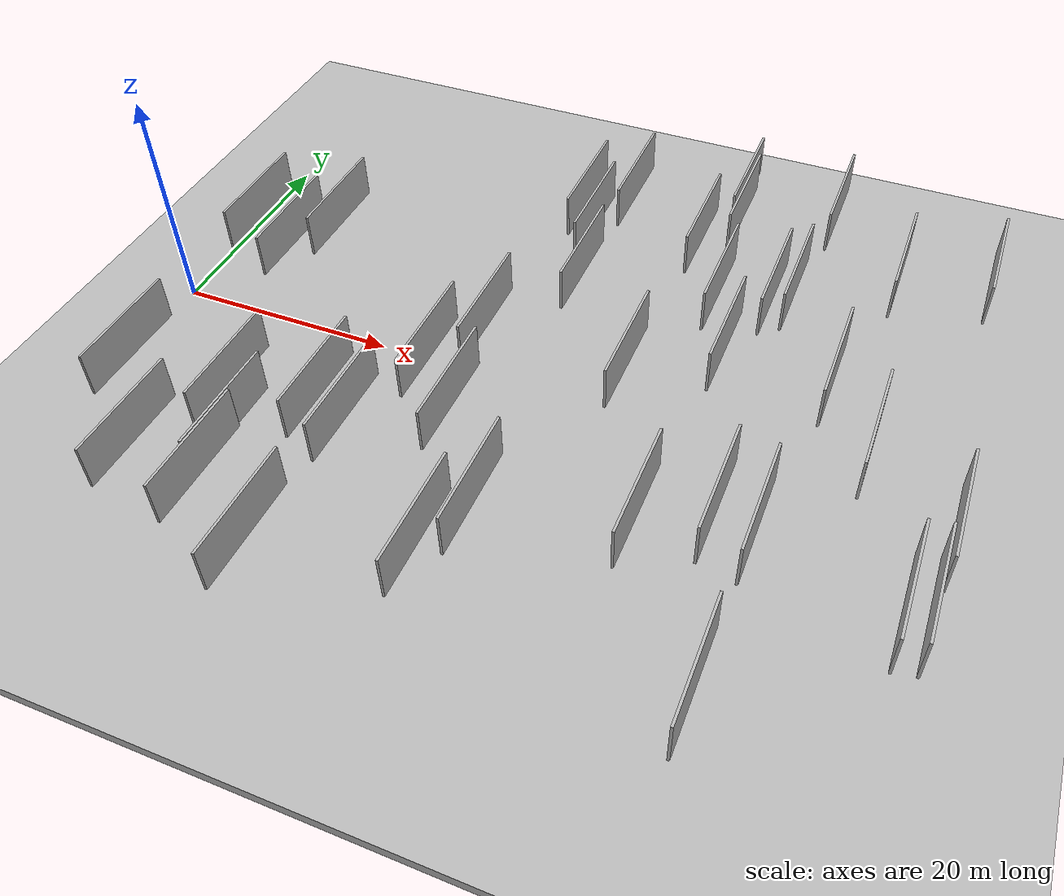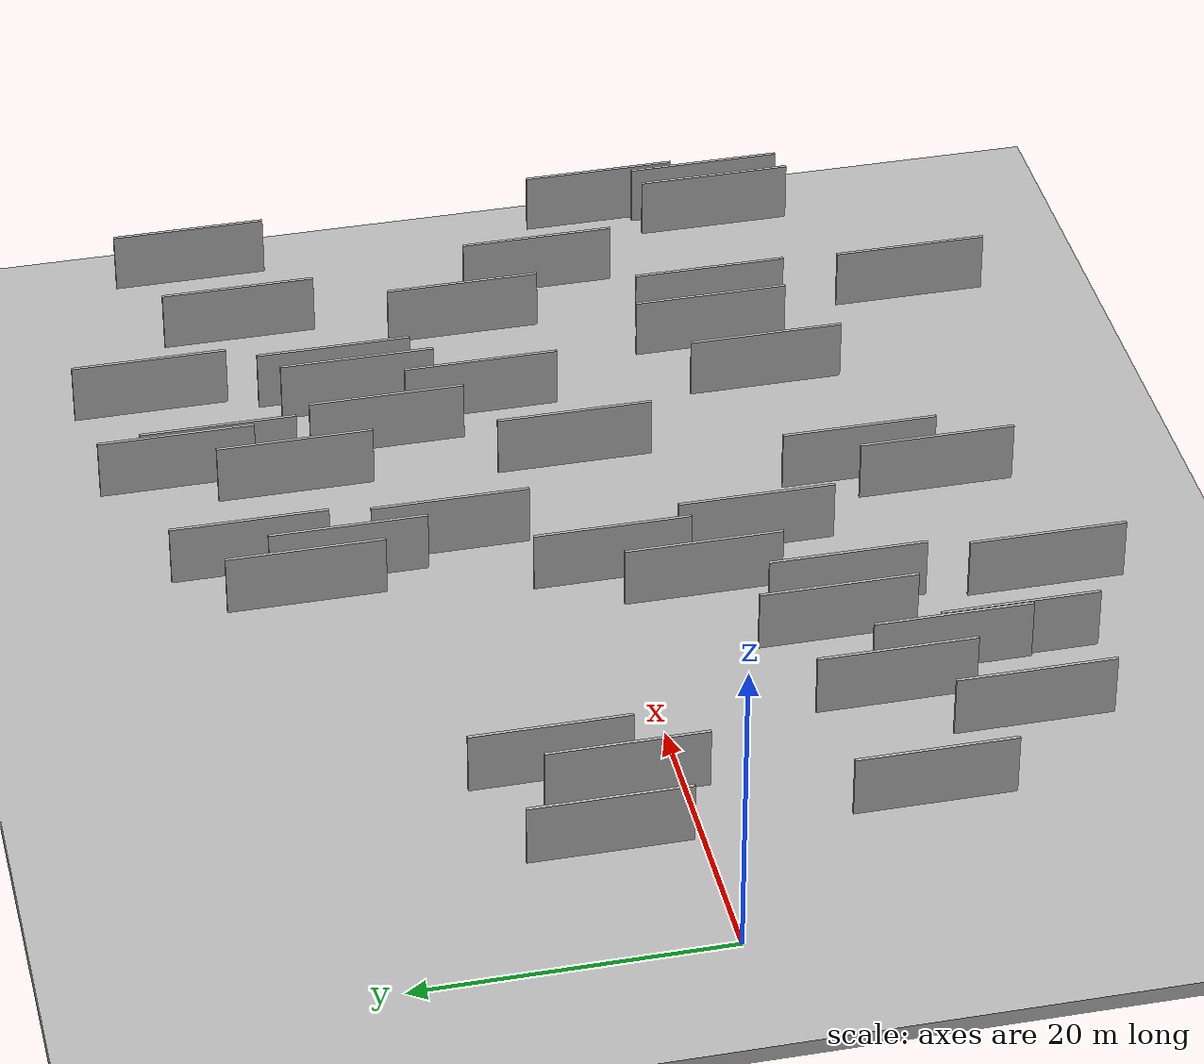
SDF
<?xml version="1.0" encoding="utf-8"?>

<sdf version="1.6">

   <world name="default">

      <gui fullscreen="0">

         <camera name="user_camera">

            <pose>-15 0 4.57585 0 0 0</pose>

            <view_controller>orbit</view_controller>

         </camera>

      </gui>

      <scene>

         <sky>

           <clouds>

             <speed>12</speed>

           </clouds>

         </sky>

         <ambient>0.4 0.4 0.4 1</ambient>

         <background>0.7 0.7 0.7 1</background>

         <shadows>1</shadows>

      </scene>

      <gravity>0 0 -9.8066</gravity>

      <magnetic_field>6e-06 2.3e-05 -4.2e-05</magnetic_field>

      <physics default="0" name="default_physics" type="ode">

         <ode>

            <solver>

               <type>quick</type>

               <iters>10</iters>

               <sor>1.0</sor>

               <use_dynamic_moi_rescaling>0</use_dynamic_moi_rescaling>

            </solver>

            <constraints>

               <cfm>0</cfm>

               <erp>0.2</erp>

               <contact_max_correcting_vel>100</contact_max_correcting_vel>

               <contact_surface_layer>0.001</contact_surface_layer>

            </constraints>

         </ode>

         <max_step_size>0.004</max_step_size>

         <real_time_factor>1</real_time_factor>

         <real_time_update_rate>250</real_time_update_rate>

      </physics>

      <light name="sun" type="directional">

         <cast_shadows>1</cast_shadows>

         <pose>0 0 10 0 0 0</pose>

         <diffuse>0.8 0.8 0.8 1</diffuse>

         <specular>0.2 0.2 0.2 1</specular>

         <attenuation>

            <range>1000</range>

            <constant>0.9</constant>

            <linear>0.01</linear>

            <quadratic>0.001</quadratic>

         </attenuation>

         <direction>-0.5 0.1 -0.9</direction>

      </light>

      <include>

         <name>ground_plane_1</name>

         <uri>model://HANNAS_ground_plane</uri>

         <pose>0 0 0  0 0 0</pose>

      </include>

      <include>

         <name>ground_plane_2</name>

         <uri>model://HANNAS_ground_plane</uri>

         <pose>100 0 0  0 0 0</pose>

      </include>

      <model name="HANNAS_wall_1">

         <static>1</static>

         <pose frame="">14.1178 -12.8779 5.0 0.000000 0.000000 1.570796</pose>

         <link name="link">

            <pose frame="">0 0 2.00 0 0 0</pose>

            <collision name="collision">

               <geometry>

                  <box>

                     <size>10.00 0.2 4.00</size>

                  </box>

               </geometry>

               <max_contacts>10</max_contacts>

               <surface>

                  <contact>

                     <ode/>

                  </contact>

                  <bounce/>

                  <friction>

                     <torsional>

                        <ode/>

                     </torsional>

                     <ode/>

                  </friction>

               </surface>

            </collision>

            <visual name="visual">

               <cast_shadows>0</cast_shadows>

               <geometry>

                  <box>

                     <size>10.00 0.2 4.00</size>

                  </box>

               </geometry>

               <material>

                  <script>

                     <uri>model://HANNAS_wall/materials/scripts</uri>

                     <uri>model://HANNAS_wall/materials/textures</uri>

                     <name>vrc/HANNAS_wall</name>

                  </script>

               </material>

            </visual>

            <self_collide>0</self_collide>

            <enable_wind>0</enable_wind>

            <kinematic>0</kinematic>

         </link>

      </model>

      <model name="HANNAS_wall_2">

         <static>1</static>

         <pose frame="">36.7798 -16.4639 5.0 0.000000 0.000000 1.570796</pose>

         <link name="link">

            <pose frame="">0 0 2.00 0 0 0</pose>

            <collision name="collision">

               <geometry>

                  <box>

                     <size>10.00 0.2 4.00</size>

                  </box>

               </geometry>

               <max_contacts>10</max_contacts>

               <surface>

                  <contact>

                     <ode/>

                  </contact>

                  <bounce/>

                  <friction>

                     <torsional>

                        <ode/>

                     </torsional>

                     <ode/>

                  </friction>

               </surface>

            </collision>

            <visual name="visual">

               <cast_shadows>0</cast_shadows>

               <geometry>

                  <box>

                     <size>10.00 0.2 4.00</size>

                  </box>

               </geometry>

               <material>

                  <script>

                     <uri>model://HANNAS_wall/materials/scripts</uri>

                     <uri>model://HANNAS_wall/materials/textures</uri>

                     <name>vrc/HANNAS_wall</name>

                  </script>

               </material>

            </visual>

            <self_collide>0</self_collide>

            <enable_wind>0</enable_wind>

            <kinematic>0</kinematic>

         </link>

      </model>

      <model name="HANNAS_wall_3">

         <static>1</static>

         <pose frame="">33.3160 17.0377 5.0 0.000000 0.000000 1.570796</pose>

         <link name="link">

            <pose frame="">0 0 2.00 0 0 0</pose>

            <collision name="collision">

               <geometry>

                  <box>

                     <size>10.00 0.2 4.00</size>

                  </box>

               </geometry>

               <max_contacts>10</max_contacts>

               <surface>

                  <contact>

                     <ode/>

                  </contact>

                  <bounce/>

                  <friction>

                     <torsional>

                        <ode/>

                     </torsional>

                     <ode/>

                  </friction>

               </surface>

            </collision>

            <visual name="visual">

               <cast_shadows>0</cast_shadows>

               <geometry>

                  <box>

                     <size>10.00 0.2 4.00</size>

                  </box>

               </geometry>

               <material>

                  <script>

                     <uri>model://HANNAS_wall/materials/scripts</uri>

                     <uri>model://HANNAS_wall/materials/textures</uri>

                     <name>vrc/HANNAS_wall</name>

                  </script>

               </material>

            </visual>

            <self_collide>0</self_collide>

            <enable_wind>0</enable_wind>

            <kinematic>0</kinematic>

         </link>

      </model>

      <model name="HANNAS_wall_4">

         <static>1</static>

         <pose frame="">48.0754 -13.1841 5.0 0.000000 0.000000 1.570796</pose>

         <link name="link">

            <pose frame="">0 0 2.00 0 0 0</pose>

            <collision name="collision">

               <geometry>

                  <box>

                     <size>10.00 0.2 4.00</size>

                  </box>

               </geometry>

               <max_contacts>10</max_contacts>

               <surface>

                  <contact>

                     <ode/>

                  </contact>

                  <bounce/>

                  <friction>

                     <torsional>

                        <ode/>

                     </torsional>

                     <ode/>

                  </friction>

               </surface>

            </collision>

            <visual name="visual">

               <cast_shadows>0</cast_shadows>

               <geometry>

                  <box>

                     <size>10.00 0.2 4.00</size>

                  </box>

               </geometry>

               <material>

                  <script>

                     <uri>model://HANNAS_wall/materials/scripts</uri>

                     <uri>model://HANNAS_wall/materials/textures</uri>

                     <name>vrc/HANNAS_wall</name>

                  </script>

               </material>

            </visual>

            <self_collide>0</self_collide>

            <enable_wind>0</enable_wind>

            <kinematic>0</kinematic>

         </link>

      </model>

      <model name="HANNAS_wall_5">

         <static>1</static>

         <pose frame="">4.1725 6.9699 5.0 0.000000 0.000000 1.570796</pose>

         <link name="link">

            <pose frame="">0 0 2.00 0 0 0</pose>

            <collision name="collision">

               <geometry>

                  <box>

                     <size>10.00 0.2 4.00</size>

                  </box>

               </geometry>

               <max_contacts>10</max_contacts>

               <surface>

                  <contact>

                     <ode/>

                  </contact>

                  <bounce/>

                  <friction>

                     <torsional>

                        <ode/>

                     </torsional>

                     <ode/>

                  </friction>

               </surface>

            </collision>

            <visual name="visual">

               <cast_shadows>0</cast_shadows>

               <geometry>

                  <box>

                     <size>10.00 0.2 4.00</size>

                  </box>

               </geometry>

               <material>

                  <script>

                     <uri>model://HANNAS_wall/materials/scripts</uri>

                     <uri>model://HANNAS_wall/materials/textures</uri>

                     <name>vrc/HANNAS_wall</name>

                  </script>

               </material>

            </visual>

            <self_collide>0</self_collide>

            <enable_wind>0</enable_wind>

            <kinematic>0</kinematic>

         </link>

      </model>

      <model name="HANNAS_wall_6">

         <static>1</static>

         <pose frame="">62.3599 -0.9885 5.0 0.000000 0.000000 1.570796</pose>

         <link name="link">

            <pose frame="">0 0 2.00 0 0 0</pose>

            <collision name="collision">

               <geometry>

                  <box>

                     <size>10.00 0.2 4.00</size>

                  </box>

               </geometry>

               <max_contacts>10</max_contacts>

               <surface>

                  <contact>

                     <ode/>

                  </contact>

                  <bounce/>

                  <friction>

                     <torsional>

                        <ode/>

                     </torsional>

                     <ode/>

                  </friction>

               </surface>

            </collision>

            <visual name="visual">

               <cast_shadows>0</cast_shadows>

               <geometry>

                  <box>

                     <size>10.00 0.2 4.00</size>

                  </box>

               </geometry>

               <material>

                  <script>

                     <uri>model://HANNAS_wall/materials/scripts</uri>

                     <uri>model://HANNAS_wall/materials/textures</uri>

                     <name>vrc/HANNAS_wall</name>

                  </script>

               </material>

            </visual>

            <self_collide>0</self_collide>

            <enable_wind>0</enable_wind>

            <kinematic>0</kinematic>

         </link>

      </model>

      <model name="HANNAS_wall_7">

         <static>1</static>

         <pose frame="">35.1991 22.9069 5.0 0.000000 0.000000 1.570796</pose>

         <link name="link">

            <pose frame="">0 0 2.00 0 0 0</pose>

            <collision name="collision">

               <geometry>

                  <box>

                     <size>10.00 0.2 4.00</size>

                  </box>

               </geometry>

               <max_contacts>10</max_contacts>

               <surface>

                  <contact>

                     <ode/>

                  </contact>

                  <bounce/>

                  <friction>

                     <torsional>

                        <ode/>

                     </torsional>

                     <ode/>

                  </friction>

               </surface>

            </collision>

            <visual name="visual">

               <cast_shadows>0</cast_shadows>

               <geometry>

                  <box>

                     <size>10.00 0.2 4.00</size>

                  </box>

               </geometry>

               <material>

                  <script>

                     <uri>model://HANNAS_wall/materials/scripts</uri>

                     <uri>model://HANNAS_wall/materials/textures</uri>

                     <name>vrc/HANNAS_wall</name>

                  </script>

               </material>

            </visual>

            <self_collide>0</self_collide>

            <enable_wind>0</enable_wind>

            <kinematic>0</kinematic>

         </link>

      </model>

      <model name="HANNAS_wall_8">

         <static>1</static>

         <pose frame="">24.0449 -12.4102 5.0 0.000000 0.000000 1.570796</pose>

         <link name="link">

            <pose frame="">0 0 2.00 0 0 0</pose>

            <collision name="collision">

               <geometry>

                  <box>

                     <size>10.00 0.2 4.00</size>

                  </box>

               </geometry>

               <max_contacts>10</max_contacts>

               <surface>

                  <contact>

                     <ode/>

                  </contact>

                  <bounce/>

                  <friction>

                     <torsional>

                        <ode/>

                     </torsional>

                     <ode/>

                  </friction>

               </surface>

            </collision>

            <visual name="visual">

               <cast_shadows>0</cast_shadows>

               <geometry>

                  <box>

                     <size>10.00 0.2 4.00</size>

                  </box>

               </geometry>

               <material>

                  <script>

                     <uri>model://HANNAS_wall/materials/scripts</uri>

                     <uri>model://HANNAS_wall/materials/textures</uri>

                     <name>vrc/HANNAS_wall</name>

                  </script>

               </material>

            </visual>

            <self_collide>0</self_collide>

            <enable_wind>0</enable_wind>

            <kinematic>0</kinematic>

         </link>

      </model>

      <model name="HANNAS_wall_9">

         <static>1</static>

         <pose frame="">60.6990 19.4219 5.0 0.000000 0.000000 1.570796</pose>

         <link name="link">

            <pose frame="">0 0 2.00 0 0 0</pose>

            <collision name="collision">

               <geometry>

                  <box>

                     <size>10.00 0.2 4.00</size>

                  </box>

               </geometry>

               <max_contacts>10</max_contacts>

               <surface>

                  <contact>

                     <ode/>

                  </contact>

                  <bounce/>

                  <friction>

                     <torsional>

                        <ode/>

                     </torsional>

                     <ode/>

                  </friction>

               </surface>

            </collision>

            <visual name="visual">

               <cast_shadows>0</cast_shadows>

               <geometry>

                  <box>

                     <size>10.00 0.2 4.00</size>

                  </box>

               </geometry>

               <material>

                  <script>

                     <uri>model://HANNAS_wall/materials/scripts</uri>

                     <uri>model://HANNAS_wall/materials/textures</uri>

                     <name>vrc/HANNAS_wall</name>

                  </script>

               </material>

            </visual>

            <self_collide>0</self_collide>

            <enable_wind>0</enable_wind>

            <kinematic>0</kinematic>

         </link>

      </model>

      <model name="HANNAS_wall_10">

         <static>1</static>

         <pose frame="">58.1045 4.9207 5.0 0.000000 0.000000 1.570796</pose>

         <link name="link">

            <pose frame="">0 0 2.00 0 0 0</pose>

            <collision name="collision">

               <geometry>

                  <box>

                     <size>10.00 0.2 4.00</size>

                  </box>

               </geometry>

               <max_contacts>10</max_contacts>

               <surface>

                  <contact>

                     <ode/>

                  </contact>

                  <bounce/>

                  <friction>

                     <torsional>

                        <ode/>

                     </torsional>

                     <ode/>

                  </friction>

               </surface>

            </collision>

            <visual name="visual">

               <cast_shadows>0</cast_shadows>

               <geometry>

                  <box>

                     <size>10.00 0.2 4.00</size>

                  </box>

               </geometry>

               <material>

                  <script>

                     <uri>model://HANNAS_wall/materials/scripts</uri>

                     <uri>model://HANNAS_wall/materials/textures</uri>

                     <name>vrc/HANNAS_wall</name>

                  </script>

               </material>

            </visual>

            <self_collide>0</self_collide>

            <enable_wind>0</enable_wind>

            <kinematic>0</kinematic>

         </link>

      </model>

      <model name="HANNAS_wall_11">

         <static>1</static>

         <pose frame="">68.9438 -13.9669 5.0 0.000000 0.000000 1.570796</pose>

         <link name="link">

            <pose frame="">0 0 2.00 0 0 0</pose>

            <collision name="collision">

               <geometry>

                  <box>

                     <size>10.00 0.2 4.00</size>

                  </box>

               </geometry>

               <max_contacts>10</max_contacts>

               <surface>

                  <contact>

                     <ode/>

                  </contact>

                  <bounce/>

                  <friction>

                     <torsional>

                        <ode/>

                     </torsional>

                     <ode/>

                  </friction>

               </surface>

            </collision>

            <visual name="visual">

               <cast_shadows>0</cast_shadows>

               <geometry>

                  <box>

                     <size>10.00 0.2 4.00</size>

                  </box>

               </geometry>

               <material>

                  <script>

                     <uri>model://HANNAS_wall/materials/scripts</uri>

                     <uri>model://HANNAS_wall/materials/textures</uri>

                     <name>vrc/HANNAS_wall</name>

                  </script>

               </material>

            </visual>

            <self_collide>0</self_collide>

            <enable_wind>0</enable_wind>

            <kinematic>0</kinematic>

         </link>

      </model>

      <model name="HANNAS_wall_12">

         <static>1</static>

         <pose frame="">53.2253 -10.7281 5.0 0.000000 0.000000 1.570796</pose>

         <link name="link">

            <pose frame="">0 0 2.00 0 0 0</pose>

            <collision name="collision">

               <geometry>

                  <box>

                     <size>10.00 0.2 4.00</size>

                  </box>

               </geometry>

               <max_contacts>10</max_contacts>

               <surface>

                  <contact>

                     <ode/>

                  </contact>

                  <bounce/>

                  <friction>

                     <torsional>

                        <ode/>

                     </torsional>

                     <ode/>

                  </friction>

               </surface>

            </collision>

            <visual name="visual">

               <cast_shadows>0</cast_shadows>

               <geometry>

                  <box>

                     <size>10.00 0.2 4.00</size>

                  </box>

               </geometry>

               <material>

                  <script>

                     <uri>model://HANNAS_wall/materials/scripts</uri>

                     <uri>model://HANNAS_wall/materials/textures</uri>

                     <name>vrc/HANNAS_wall</name>

                  </script>

               </material>

            </visual>

            <self_collide>0</self_collide>

            <enable_wind>0</enable_wind>

            <kinematic>0</kinematic>

         </link>

      </model>

      <model name="HANNAS_wall_13">

         <static>1</static>

         <pose frame="">4.4175 -12.6382 5.0 0.000000 0.000000 1.570796</pose>

         <link name="link">

            <pose frame="">0 0 2.00 0 0 0</pose>

            <collision name="collision">

               <geometry>

                  <box>

                     <size>10.00 0.2 4.00</size>

                  </box>

               </geometry>

               <max_contacts>10</max_contacts>

               <surface>

                  <contact>

                     <ode/>

                  </contact>

                  <bounce/>

                  <friction>

                     <torsional>

                        <ode/>

                     </torsional>

                     <ode/>

                  </friction>

               </surface>

            </collision>

            <visual name="visual">

               <cast_shadows>0</cast_shadows>

               <geometry>

                  <box>

                     <size>10.00 0.2 4.00</size>

                  </box>

               </geometry>

               <material>

                  <script>

                     <uri>model://HANNAS_wall/materials/scripts</uri>

                     <uri>model://HANNAS_wall/materials/textures</uri>

                     <name>vrc/HANNAS_wall</name>

                  </script>

               </material>

            </visual>

            <self_collide>0</self_collide>

            <enable_wind>0</enable_wind>

            <kinematic>0</kinematic>

         </link>

      </model>

      <model name="HANNAS_wall_14">

         <static>1</static>

         <pose frame="">69.4269 -6.7872 5.0 0.000000 0.000000 1.570796</pose>

         <link name="link">

            <pose frame="">0 0 2.00 0 0 0</pose>

            <collision name="collision">

               <geometry>

                  <box>

                     <size>10.00 0.2 4.00</size>

                  </box>

               </geometry>

               <max_contacts>10</max_contacts>

               <surface>

                  <contact>

                     <ode/>

                  </contact>

                  <bounce/>

                  <friction>

                     <torsional>

                        <ode/>

                     </torsional>

                     <ode/>

                  </friction>

               </surface>

            </collision>

            <visual name="visual">

               <cast_shadows>0</cast_shadows>

               <geometry>

                  <box>

                     <size>10.00 0.2 4.00</size>

                  </box>

               </geometry>

               <material>

                  <script>

                     <uri>model://HANNAS_wall/materials/scripts</uri>

                     <uri>model://HANNAS_wall/materials/textures</uri>

                     <name>vrc/HANNAS_wall</name>

                  </script>

               </material>

            </visual>

            <self_collide>0</self_collide>

            <enable_wind>0</enable_wind>

            <kinematic>0</kinematic>

         </link>

      </model>

      <model name="HANNAS_wall_15">

         <static>1</static>

         <pose frame="">46.5696 12.1507 5.0 0.000000 0.000000 1.570796</pose>

         <link name="link">

            <pose frame="">0 0 2.00 0 0 0</pose>

            <collision name="collision">

               <geometry>

                  <box>

                     <size>10.00 0.2 4.00</size>

                  </box>

               </geometry>

               <max_contacts>10</max_contacts>

               <surface>

                  <contact>

                     <ode/>

                  </contact>

                  <bounce/>

                  <friction>

                     <torsional>

                        <ode/>

                     </torsional>

                     <ode/>

                  </friction>

               </surface>

            </collision>

            <visual name="visual">

               <cast_shadows>0</cast_shadows>

               <geometry>

                  <box>

                     <size>10.00 0.2 4.00</size>

                  </box>

               </geometry>

               <material>

                  <script>

                     <uri>model://HANNAS_wall/materials/scripts</uri>

                     <uri>model://HANNAS_wall/materials/textures</uri>

                     <name>vrc/HANNAS_wall</name>

                  </script>

               </material>

            </visual>

            <self_collide>0</self_collide>

            <enable_wind>0</enable_wind>

            <kinematic>0</kinematic>

         </link>

      </model>

      <model name="HANNAS_wall_16">

         <static>1</static>

         <pose frame="">51.0550 13.2389 5.0 0.000000 0.000000 1.570796</pose>

         <link name="link">

            <pose frame="">0 0 2.00 0 0 0</pose>

            <collision name="collision">

               <geometry>

                  <box>

                     <size>10.00 0.2 4.00</size>

                  </box>

               </geometry>

               <max_contacts>10</max_contacts>

               <surface>

                  <contact>

                     <ode/>

                  </contact>

                  <bounce/>

                  <friction>

                     <torsional>

                        <ode/>

                     </torsional>

                     <ode/>

                  </friction>

               </surface>

            </collision>

            <visual name="visual">

               <cast_shadows>0</cast_shadows>

               <geometry>

                  <box>

                     <size>10.00 0.2 4.00</size>

                  </box>

               </geometry>

               <material>

                  <script>

                     <uri>model://HANNAS_wall/materials/scripts</uri>

                     <uri>model://HANNAS_wall/materials/textures</uri>

                     <name>vrc/HANNAS_wall</name>

                  </script>

               </material>

            </visual>

            <self_collide>0</self_collide>

            <enable_wind>0</enable_wind>

            <kinematic>0</kinematic>

         </link>

      </model>

      <model name="HANNAS_wall_17">

         <static>1</static>

         <pose frame="">10.3874 -20.4244 5.0 0.000000 0.000000 1.570796</pose>

         <link name="link">

            <pose frame="">0 0 2.00 0 0 0</pose>

            <collision name="collision">

               <geometry>

                  <box>

                     <size>10.00 0.2 4.00</size>

                  </box>

               </geometry>

               <max_contacts>10</max_contacts>

               <surface>

                  <contact>

                     <ode/>

                  </contact>

                  <bounce/>

                  <friction>

                     <torsional>

                        <ode/>

                     </torsional>

                     <ode/>

                  </friction>

               </surface>

            </collision>

            <visual name="visual">

               <cast_shadows>0</cast_shadows>

               <geometry>

                  <box>

                     <size>10.00 0.2 4.00</size>

                  </box>

               </geometry>

               <material>

                  <script>

                     <uri>model://HANNAS_wall/materials/scripts</uri>

                     <uri>model://HANNAS_wall/materials/textures</uri>

                     <name>vrc/HANNAS_wall</name>

                  </script>

               </material>

            </visual>

            <self_collide>0</self_collide>

            <enable_wind>0</enable_wind>

            <kinematic>0</kinematic>

         </link>

      </model>

      <model name="HANNAS_wall_18">

         <static>1</static>

         <pose frame="">42.2361 0.8072 5.0 0.000000 0.000000 1.570796</pose>

         <link name="link">

            <pose frame="">0 0 2.00 0 0 0</pose>

            <collision name="collision">

               <geometry>

                  <box>

                     <size>10.00 0.2 4.00</size>

                  </box>

               </geometry>

               <max_contacts>10</max_contacts>

               <surface>

                  <contact>

                     <ode/>

                  </contact>

                  <bounce/>

                  <friction>

                     <torsional>

                        <ode/>

                     </torsional>

                     <ode/>

                  </friction>

               </surface>

            </collision>

            <visual name="visual">

               <cast_shadows>0</cast_shadows>

               <geometry>

                  <box>

                     <size>10.00 0.2 4.00</size>

                  </box>

               </geometry>

               <material>

                  <script>

                     <uri>model://HANNAS_wall/materials/scripts</uri>

                     <uri>model://HANNAS_wall/materials/textures</uri>

                     <name>vrc/HANNAS_wall</name>

                  </script>

               </material>

            </visual>

            <self_collide>0</self_collide>

            <enable_wind>0</enable_wind>

            <kinematic>0</kinematic>

         </link>

      </model>

      <model name="HANNAS_wall_19">

         <static>1</static>

         <pose frame="">45.5545 23.1667 5.0 0.000000 0.000000 1.570796</pose>

         <link name="link">

            <pose frame="">0 0 2.00 0 0 0</pose>

            <collision name="collision">

               <geometry>

                  <box>

                     <size>10.00 0.2 4.00</size>

                  </box>

               </geometry>

               <max_contacts>10</max_contacts>

               <surface>

                  <contact>

                     <ode/>

                  </contact>

                  <bounce/>

                  <friction>

                     <torsional>

                        <ode/>

                     </torsional>

                     <ode/>

                  </friction>

               </surface>

            </collision>

            <visual name="visual">

               <cast_shadows>0</cast_shadows>

               <geometry>

                  <box>

                     <size>10.00 0.2 4.00</size>

                  </box>

               </geometry>

               <material>

                  <script>

                     <uri>model://HANNAS_wall/materials/scripts</uri>

                     <uri>model://HANNAS_wall/materials/textures</uri>

                     <name>vrc/HANNAS_wall</name>

                  </script>

               </material>

            </visual>

            <self_collide>0</self_collide>

            <enable_wind>0</enable_wind>

            <kinematic>0</kinematic>

         </link>

      </model>

      <model name="HANNAS_wall_20">

         <static>1</static>

         <pose frame="">27.0058 -4.0268 5.0 0.000000 0.000000 1.570796</pose>

         <link name="link">

            <pose frame="">0 0 2.00 0 0 0</pose>

            <collision name="collision">

               <geometry>

                  <box>

                     <size>10.00 0.2 4.00</size>

                  </box>

               </geometry>

               <max_contacts>10</max_contacts>

               <surface>

                  <contact>

                     <ode/>

                  </contact>

                  <bounce/>

                  <friction>

                     <torsional>

                        <ode/>

                     </torsional>

                     <ode/>

                  </friction>

               </surface>

            </collision>

            <visual name="visual">

               <cast_shadows>0</cast_shadows>

               <geometry>

                  <box>

                     <size>10.00 0.2 4.00</size>

                  </box>

               </geometry>

               <material>

                  <script>

                     <uri>model://HANNAS_wall/materials/scripts</uri>

                     <uri>model://HANNAS_wall/materials/textures</uri>

                     <name>vrc/HANNAS_wall</name>

                  </script>

               </material>

            </visual>

            <self_collide>0</self_collide>

            <enable_wind>0</enable_wind>

            <kinematic>0</kinematic>

         </link>

      </model>

      <model name="HANNAS_wall_21">

         <static>1</static>

         <pose frame="">56.3646 -11.3895 5.0 0.000000 0.000000 1.570796</pose>

         <link name="link">

            <pose frame="">0 0 2.00 0 0 0</pose>

            <collision name="collision">

               <geometry>

                  <box>

                     <size>10.00 0.2 4.00</size>

                  </box>

               </geometry>

               <max_contacts>10</max_contacts>

               <surface>

                  <contact>

                     <ode/>

                  </contact>

                  <bounce/>

                  <friction>

                     <torsional>

                        <ode/>

                     </torsional>

                     <ode/>

                  </friction>

               </surface>

            </collision>

            <visual name="visual">

               <cast_shadows>0</cast_shadows>

               <geometry>

                  <box>

                     <size>10.00 0.2 4.00</size>

                  </box>

               </geometry>

               <material>

                  <script>

                     <uri>model://HANNAS_wall/materials/scripts</uri>

                     <uri>model://HANNAS_wall/materials/textures</uri>

                     <name>vrc/HANNAS_wall</name>

                  </script>

               </material>

            </visual>

            <self_collide>0</self_collide>

            <enable_wind>0</enable_wind>

            <kinematic>0</kinematic>

         </link>

      </model>

      <model name="HANNAS_wall_22">

         <static>1</static>

         <pose frame="">42.9949 18.6971 5.0 0.000000 0.000000 1.570796</pose>

         <link name="link">

            <pose frame="">0 0 2.00 0 0 0</pose>

            <collision name="collision">

               <geometry>

                  <box>

                     <size>10.00 0.2 4.00</size>

                  </box>

               </geometry>

               <max_contacts>10</max_contacts>

               <surface>

                  <contact>

                     <ode/>

                  </contact>

                  <bounce/>

                  <friction>

                     <torsional>

                        <ode/>

                     </torsional>

                     <ode/>

                  </friction>

               </surface>

            </collision>

            <visual name="visual">

               <cast_shadows>0</cast_shadows>

               <geometry>

                  <box>

                     <size>10.00 0.2 4.00</size>

                  </box>

               </geometry>

               <material>

                  <script>

                     <uri>model://HANNAS_wall/materials/scripts</uri>

                     <uri>model://HANNAS_wall/materials/textures</uri>

                     <name>vrc/HANNAS_wall</name>

                  </script>

               </material>

            </visual>

            <self_collide>0</self_collide>

            <enable_wind>0</enable_wind>

            <kinematic>0</kinematic>

         </link>

      </model>

      <model name="HANNAS_wall_23">

         <static>1</static>

         <pose frame="">8.8489 4.8941 5.0 0.000000 0.000000 1.570796</pose>

         <link name="link">

            <pose frame="">0 0 2.00 0 0 0</pose>

            <collision name="collision">

               <geometry>

                  <box>

                     <size>10.00 0.2 4.00</size>

                  </box>

               </geometry>

               <max_contacts>10</max_contacts>

               <surface>

                  <contact>

                     <ode/>

                  </contact>

                  <bounce/>

                  <friction>

                     <torsional>

                        <ode/>

                     </torsional>

                     <ode/>

                  </friction>

               </surface>

            </collision>

            <visual name="visual">

               <cast_shadows>0</cast_shadows>

               <geometry>

                  <box>

                     <size>10.00 0.2 4.00</size>

                  </box>

               </geometry>

               <material>

                  <script>

                     <uri>model://HANNAS_wall/materials/scripts</uri>

                     <uri>model://HANNAS_wall/materials/textures</uri>

                     <name>vrc/HANNAS_wall</name>

                  </script>

               </material>

            </visual>

            <self_collide>0</self_collide>

            <enable_wind>0</enable_wind>

            <kinematic>0</kinematic>

         </link>

      </model>

      <model name="HANNAS_wall_24">

         <static>1</static>

         <pose frame="">56.0431 -24.9999 5.0 0.000000 0.000000 1.570796</pose>

         <link name="link">

            <pose frame="">0 0 2.00 0 0 0</pose>

            <collision name="collision">

               <geometry>

                  <box>

                     <size>10.00 0.2 4.00</size>

                  </box>

               </geometry>

               <max_contacts>10</max_contacts>

               <surface>

                  <contact>

                     <ode/>

                  </contact>

                  <bounce/>

                  <friction>

                     <torsional>

                        <ode/>

                     </torsional>

                     <ode/>

                  </friction>

               </surface>

            </collision>

            <visual name="visual">

               <cast_shadows>0</cast_shadows>

               <geometry>

                  <box>

                     <size>10.00 0.2 4.00</size>

                  </box>

               </geometry>

               <material>

                  <script>

                     <uri>model://HANNAS_wall/materials/scripts</uri>

                     <uri>model://HANNAS_wall/materials/textures</uri>

                     <name>vrc/HANNAS_wall</name>

                  </script>

               </material>

            </visual>

            <self_collide>0</self_collide>

            <enable_wind>0</enable_wind>

            <kinematic>0</kinematic>

         </link>

      </model>

      <model name="HANNAS_wall_25">

         <static>1</static>

         <pose frame="">23.3448 -24.9242 5.0 0.000000 0.000000 1.570796</pose>

         <link name="link">

            <pose frame="">0 0 2.00 0 0 0</pose>

            <collision name="collision">

               <geometry>

                  <box>

                     <size>10.00 0.2 4.00</size>

                  </box>

               </geometry>

               <max_contacts>10</max_contacts>

               <surface>

                  <contact>

                     <ode/>

                  </contact>

                  <bounce/>

                  <friction>

                     <torsional>

                        <ode/>

                     </torsional>

                     <ode/>

                  </friction>

               </surface>

            </collision>

            <visual name="visual">

               <cast_shadows>0</cast_shadows>

               <geometry>

                  <box>

                     <size>10.00 0.2 4.00</size>

                  </box>

               </geometry>

               <material>

                  <script>

                     <uri>model://HANNAS_wall/materials/scripts</uri>

                     <uri>model://HANNAS_wall/materials/textures</uri>

                     <name>vrc/HANNAS_wall</name>

                  </script>

               </material>

            </visual>

            <self_collide>0</self_collide>

            <enable_wind>0</enable_wind>

            <kinematic>0</kinematic>

         </link>

      </model>

      <model name="HANNAS_wall_26">

         <static>1</static>

         <pose frame="">20.9735 -11.0224 5.0 0.000000 0.000000 1.570796</pose>

         <link name="link">

            <pose frame="">0 0 2.00 0 0 0</pose>

            <collision name="collision">

               <geometry>

                  <box>

                     <size>10.00 0.2 4.00</size>

                  </box>

               </geometry>

               <max_contacts>10</max_contacts>

               <surface>

                  <contact>

                     <ode/>

                  </contact>

                  <bounce/>

                  <friction>

                     <torsional>

                        <ode/>

                     </torsional>

                     <ode/>

                  </friction>

               </surface>

            </collision>

            <visual name="visual">

               <cast_shadows>0</cast_shadows>

               <geometry>

                  <box>

                     <size>10.00 0.2 4.00</size>

                  </box>

               </geometry>

               <material>

                  <script>

                     <uri>model://HANNAS_wall/materials/scripts</uri>

                     <uri>model://HANNAS_wall/materials/textures</uri>

                     <name>vrc/HANNAS_wall</name>

                  </script>

               </material>

            </visual>

            <self_collide>0</self_collide>

            <enable_wind>0</enable_wind>

            <kinematic>0</kinematic>

         </link>

      </model>

      <model name="HANNAS_wall_27">

         <static>1</static>

         <pose frame="">29.7457 1.1203 5.0 0.000000 0.000000 1.570796</pose>

         <link name="link">

            <pose frame="">0 0 2.00 0 0 0</pose>

            <collision name="collision">

               <geometry>

                  <box>

                     <size>10.00 0.2 4.00</size>

                  </box>

               </geometry>

               <max_contacts>10</max_contacts>

               <surface>

                  <contact>

                     <ode/>

                  </contact>

                  <bounce/>

                  <friction>

                     <torsional>

                        <ode/>

                     </torsional>

                     <ode/>

                  </friction>

               </surface>

            </collision>

            <visual name="visual">

               <cast_shadows>0</cast_shadows>

               <geometry>

                  <box>

                     <size>10.00 0.2 4.00</size>

                  </box>

               </geometry>

               <material>

                  <script>

                     <uri>model://HANNAS_wall/materials/scripts</uri>

                     <uri>model://HANNAS_wall/materials/textures</uri>

                     <name>vrc/HANNAS_wall</name>

                  </script>

               </material>

            </visual>

            <self_collide>0</self_collide>

            <enable_wind>0</enable_wind>

            <kinematic>0</kinematic>

         </link>

      </model>

      <model name="HANNAS_wall_28">

         <static>1</static>

         <pose frame="">11.3532 8.9660 5.0 0.000000 0.000000 1.570796</pose>

         <link name="link">

            <pose frame="">0 0 2.00 0 0 0</pose>

            <collision name="collision">

               <geometry>

                  <box>

                     <size>10.00 0.2 4.00</size>

                  </box>

               </geometry>

               <max_contacts>10</max_contacts>

               <surface>

                  <contact>

                     <ode/>

                  </contact>

                  <bounce/>

                  <friction>

                     <torsional>

                        <ode/>

                     </torsional>

                     <ode/>

                  </friction>

               </surface>

            </collision>

            <visual name="visual">

               <cast_shadows>0</cast_shadows>

               <geometry>

                  <box>

                     <size>10.00 0.2 4.00</size>

                  </box>

               </geometry>

               <material>

                  <script>

                     <uri>model://HANNAS_wall/materials/scripts</uri>

                     <uri>model://HANNAS_wall/materials/textures</uri>

                     <name>vrc/HANNAS_wall</name>

                  </script>

               </material>

            </visual>

            <self_collide>0</self_collide>

            <enable_wind>0</enable_wind>

            <kinematic>0</kinematic>

         </link>

      </model>

      <model name="HANNAS_wall_29">

         <static>1</static>

         <pose frame="">31.4552 20.0256 5.0 0.000000 0.000000 1.570796</pose>

         <link name="link">

            <pose frame="">0 0 2.00 0 0 0</pose>

            <collision name="collision">

               <geometry>

                  <box>

                     <size>10.00 0.2 4.00</size>

                  </box>

               </geometry>

               <max_contacts>10</max_contacts>

               <surface>

                  <contact>

                     <ode/>

                  </contact>

                  <bounce/>

                  <friction>

                     <torsional>

                        <ode/>

                     </torsional>

                     <ode/>

                  </friction>

               </surface>

            </collision>

            <visual name="visual">

               <cast_shadows>0</cast_shadows>

               <geometry>

                  <box>

                     <size>10.00 0.2 4.00</size>

                  </box>

               </geometry>

               <material>

                  <script>

                     <uri>model://HANNAS_wall/materials/scripts</uri>

                     <uri>model://HANNAS_wall/materials/textures</uri>

                     <name>vrc/HANNAS_wall</name>

                  </script>

               </material>

            </visual>

            <self_collide>0</self_collide>

            <enable_wind>0</enable_wind>

            <kinematic>0</kinematic>

         </link>

      </model>

      <model name="HANNAS_wall_30">

         <static>1</static>

         <pose frame="">67.2273 -14.3092 5.0 0.000000 0.000000 1.570796</pose>

         <link name="link">

            <pose frame="">0 0 2.00 0 0 0</pose>

            <collision name="collision">

               <geometry>

                  <box>

                     <size>10.00 0.2 4.00</size>

                  </box>

               </geometry>

               <max_contacts>10</max_contacts>

               <surface>

                  <contact>

                     <ode/>

                  </contact>

                  <bounce/>

                  <friction>

                     <torsional>

                        <ode/>

                     </torsional>

                     <ode/>

                  </friction>

               </surface>

            </collision>

            <visual name="visual">

               <cast_shadows>0</cast_shadows>

               <geometry>

                  <box>

                     <size>10.00 0.2 4.00</size>

                  </box>

               </geometry>

               <material>

                  <script>

                     <uri>model://HANNAS_wall/materials/scripts</uri>

                     <uri>model://HANNAS_wall/materials/textures</uri>

                     <name>vrc/HANNAS_wall</name>

                  </script>

               </material>

            </visual>

            <self_collide>0</self_collide>

            <enable_wind>0</enable_wind>

            <kinematic>0</kinematic>

         </link>

      </model>

      <model name="HANNAS_wall_31">

         <static>1</static>

         <pose frame="">53.7250 26.3643 5.0 0.000000 0.000000 1.570796</pose>

         <link name="link">

            <pose frame="">0 0 2.00 0 0 0</pose>

            <collision name="collision">

               <geometry>

                  <box>

                     <size>10.00 0.2 4.00</size>

                  </box>

               </geometry>

               <max_contacts>10</max_contacts>

               <surface>

                  <contact>

                     <ode/>

                  </contact>

                  <bounce/>

                  <friction>

                     <torsional>

                        <ode/>

                     </torsional>

                     <ode/>

                  </friction>

               </surface>

            </collision>

            <visual name="visual">

               <cast_shadows>0</cast_shadows>

               <geometry>

                  <box>

                     <size>10.00 0.2 4.00</size>

                  </box>

               </geometry>

               <material>

                  <script>

                     <uri>model://HANNAS_wall/materials/scripts</uri>

                     <uri>model://HANNAS_wall/materials/textures</uri>

                     <name>vrc/HANNAS_wall</name>

                  </script>

               </material>

            </visual>

            <self_collide>0</self_collide>

            <enable_wind>0</enable_wind>

            <kinematic>0</kinematic>

         </link>

      </model>

      <model name="HANNAS_wall_32">

         <static>1</static>

         <pose frame="">49.0584 5.4986 5.0 0.000000 0.000000 1.570796</pose>

         <link name="link">

            <pose frame="">0 0 2.00 0 0 0</pose>

            <collision name="collision">

               <geometry>

                  <box>

                     <size>10.00 0.2 4.00</size>

                  </box>

               </geometry>

               <max_contacts>10</max_contacts>

               <surface>

                  <contact>

                     <ode/>

                  </contact>

                  <bounce/>

                  <friction>

                     <torsional>

                        <ode/>

                     </torsional>

                     <ode/>

                  </friction>

               </surface>

            </collision>

            <visual name="visual">

               <cast_shadows>0</cast_shadows>

               <geometry>

                  <box>

                     <size>10.00 0.2 4.00</size>

                  </box>

               </geometry>

               <material>

                  <script>

                     <uri>model://HANNAS_wall/materials/scripts</uri>

                     <uri>model://HANNAS_wall/materials/textures</uri>

                     <name>vrc/HANNAS_wall</name>

                  </script>

               </material>

            </visual>

            <self_collide>0</self_collide>

            <enable_wind>0</enable_wind>

            <kinematic>0</kinematic>

         </link>

      </model>

      <model name="HANNAS_wall_33">

         <static>1</static>

         <pose frame="">34.7038 -20.9915 5.0 0.000000 0.000000 1.570796</pose>

         <link name="link">

            <pose frame="">0 0 2.00 0 0 0</pose>

            <collision name="collision">

               <geometry>

                  <box>

                     <size>10.00 0.2 4.00</size>

                  </box>

               </geometry>

               <max_contacts>10</max_contacts>

               <surface>

                  <contact>

                     <ode/>

                  </contact>

                  <bounce/>

                  <friction>

                     <torsional>

                        <ode/>

                     </torsional>

                     <ode/>

                  </friction>

               </surface>

            </collision>

            <visual name="visual">

               <cast_shadows>0</cast_shadows>

               <geometry>

                  <box>

                     <size>10.00 0.2 4.00</size>

                  </box>

               </geometry>

               <material>

                  <script>

                     <uri>model://HANNAS_wall/materials/scripts</uri>

                     <uri>model://HANNAS_wall/materials/textures</uri>

                     <name>vrc/HANNAS_wall</name>

                  </script>

               </material>

            </visual>

            <self_collide>0</self_collide>

            <enable_wind>0</enable_wind>

            <kinematic>0</kinematic>

         </link>

      </model>

      <model name="HANNAS_wall_34">

         <static>1</static>

         <pose frame="">34.7171 10.3450 5.0 0.000000 0.000000 1.570796</pose>

         <link name="link">

            <pose frame="">0 0 2.00 0 0 0</pose>

            <collision name="collision">

               <geometry>

                  <box>

                     <size>10.00 0.2 4.00</size>

                  </box>

               </geometry>

               <max_contacts>10</max_contacts>

               <surface>

                  <contact>

                     <ode/>

                  </contact>

                  <bounce/>

                  <friction>

                     <torsional>

                        <ode/>

                     </torsional>

                     <ode/>

                  </friction>

               </surface>

            </collision>

            <visual name="visual">

               <cast_shadows>0</cast_shadows>

               <geometry>

                  <box>

                     <size>10.00 0.2 4.00</size>

                  </box>

               </geometry>

               <material>

                  <script>

                     <uri>model://HANNAS_wall/materials/scripts</uri>

                     <uri>model://HANNAS_wall/materials/textures</uri>

                     <name>vrc/HANNAS_wall</name>

                  </script>

               </material>

            </visual>

            <self_collide>0</self_collide>

            <enable_wind>0</enable_wind>

            <kinematic>0</kinematic>

         </link>

      </model>

      <model name="HANNAS_wall_35">

         <static>1</static>

         <pose frame="">31.0627 -8.3539 5.0 0.000000 0.000000 1.570796</pose>

         <link name="link">

            <pose frame="">0 0 2.00 0 0 0</pose>

            <collision name="collision">

               <geometry>

                  <box>

                     <size>10.00 0.2 4.00</size>

                  </box>

               </geometry>

               <max_contacts>10</max_contacts>

               <surface>

                  <contact>

                     <ode/>

                  </contact>

                  <bounce/>

                  <friction>

                     <torsional>

                        <ode/>

                     </torsional>

                     <ode/>

                  </friction>

               </surface>

            </collision>

            <visual name="visual">

               <cast_shadows>0</cast_shadows>

               <geometry>

                  <box>

                     <size>10.00 0.2 4.00</size>

                  </box>

               </geometry>

               <material>

                  <script>

                     <uri>model://HANNAS_wall/materials/scripts</uri>

                     <uri>model://HANNAS_wall/materials/textures</uri>

                     <name>vrc/HANNAS_wall</name>

                  </script>

               </material>

            </visual>

            <self_collide>0</self_collide>

            <enable_wind>0</enable_wind>

            <kinematic>0</kinematic>

         </link>

      </model>

      <model name="HANNAS_wall_36">

         <static>1</static>

         <pose frame="">16.6821 -17.0603 5.0 0.000000 0.000000 1.570796</pose>

         <link name="link">

            <pose frame="">0 0 2.00 0 0 0</pose>

            <collision name="collision">

               <geometry>

                  <box>

                     <size>10.00 0.2 4.00</size>

                  </box>

               </geometry>

               <max_contacts>10</max_contacts>

               <surface>

                  <contact>

                     <ode/>

                  </contact>

                  <bounce/>

                  <friction>

                     <torsional>

                        <ode/>

                     </torsional>

                     <ode/>

                  </friction>

               </surface>

            </collision>

            <visual name="visual">

               <cast_shadows>0</cast_shadows>

               <geometry>

                  <box>

                     <size>10.00 0.2 4.00</size>

                  </box>

               </geometry>

               <material>

                  <script>

                     <uri>model://HANNAS_wall/materials/scripts</uri>

                     <uri>model://HANNAS_wall/materials/textures</uri>

                     <name>vrc/HANNAS_wall</name>

                  </script>

               </material>

            </visual>

            <self_collide>0</self_collide>

            <enable_wind>0</enable_wind>

            <kinematic>0</kinematic>

         </link>

      </model>

      <model name="HANNAS_wall_37">

         <static>1</static>

         <pose frame="">16.9310 -21.3491 5.0 0.000000 0.000000 1.570796</pose>

         <link name="link">

            <pose frame="">0 0 2.00 0 0 0</pose>

            <collision name="collision">

               <geometry>

                  <box>

                     <size>10.00 0.2 4.00</size>

                  </box>

               </geometry>

               <max_contacts>10</max_contacts>

               <surface>

                  <contact>

                     <ode/>

                  </contact>

                  <bounce/>

                  <friction>

                     <torsional>

                        <ode/>

                     </torsional>

                     <ode/>

                  </friction>

               </surface>

            </collision>

            <visual name="visual">

               <cast_shadows>0</cast_shadows>

               <geometry>

                  <box>

                     <size>10.00 0.2 4.00</size>

                  </box>

               </geometry>

               <material>

                  <script>

                     <uri>model://HANNAS_wall/materials/scripts</uri>

                     <uri>model://HANNAS_wall/materials/textures</uri>

                     <name>vrc/HANNAS_wall</name>

                  </script>

               </material>

            </visual>

            <self_collide>0</self_collide>

            <enable_wind>0</enable_wind>

            <kinematic>0</kinematic>

         </link>

      </model>

      <model name="HANNAS_wall_38">

         <static>1</static>

         <pose frame="">45.1322 25.9305 5.0 0.000000 0.000000 1.570796</pose>

         <link name="link">

            <pose frame="">0 0 2.00 0 0 0</pose>

            <collision name="collision">

               <geometry>

                  <box>

                     <size>10.00 0.2 4.00</size>

                  </box>

               </geometry>

               <max_contacts>10</max_contacts>

               <surface>

                  <contact>

                     <ode/>

                  </contact>

                  <bounce/>

                  <friction>

                     <torsional>

                        <ode/>

                     </torsional>

                     <ode/>

                  </friction>

               </surface>

            </collision>

            <visual name="visual">

               <cast_shadows>0</cast_shadows>

               <geometry>

                  <box>

                     <size>10.00 0.2 4.00</size>

                  </box>

               </geometry>

               <material>

                  <script>

                     <uri>model://HANNAS_wall/materials/scripts</uri>

                     <uri>model://HANNAS_wall/materials/textures</uri>

                     <name>vrc/HANNAS_wall</name>

                  </script>

               </material>

            </visual>

            <self_collide>0</self_collide>

            <enable_wind>0</enable_wind>

            <kinematic>0</kinematic>

         </link>

      </model>

      <model name="HANNAS_wall_39">

         <static>1</static>

         <pose frame="">68.2563 21.5288 5.0 0.000000 0.000000 1.570796</pose>

         <link name="link">

            <pose frame="">0 0 2.00 0 0 0</pose>

            <collision name="collision">

               <geometry>

                  <box>

                     <size>10.00 0.2 4.00</size>

                  </box>

               </geometry>

               <max_contacts>10</max_contacts>

               <surface>

                  <contact>

                     <ode/>

                  </contact>

                  <bounce/>

                  <friction>

                     <torsional>

                        <ode/>

                     </torsional>

                     <ode/>

                  </friction>

               </surface>

            </collision>

            <visual name="visual">

               <cast_shadows>0</cast_shadows>

               <geometry>

                  <box>

                     <size>10.00 0.2 4.00</size>

                  </box>

               </geometry>

               <material>

                  <script>

                     <uri>model://HANNAS_wall/materials/scripts</uri>

                     <uri>model://HANNAS_wall/materials/textures</uri>

                     <name>vrc/HANNAS_wall</name>

                  </script>

               </material>

            </visual>

            <self_collide>0</self_collide>

            <enable_wind>0</enable_wind>

            <kinematic>0</kinematic>

         </link>

      </model>

      <model name="HANNAS_wall_40">

         <static>1</static>

         <pose frame="">52.6392 14.5028 5.0 0.000000 0.000000 1.570796</pose>

         <link name="link">

            <pose frame="">0 0 2.00 0 0 0</pose>

            <collision name="collision">

               <geometry>

                  <box>

                     <size>10.00 0.2 4.00</size>

                  </box>

               </geometry>

               <max_contacts>10</max_contacts>

               <surface>

                  <contact>

                     <ode/>

                  </contact>

                  <bounce/>

                  <friction>

                     <torsional>

                        <ode/>

                     </torsional>

                     <ode/>

                  </friction>

               </surface>

            </collision>

            <visual name="visual">

               <cast_shadows>0</cast_shadows>

               <geometry>

                  <box>

                     <size>10.00 0.2 4.00</size>

                  </box>

               </geometry>

               <material>

                  <script>

                     <uri>model://HANNAS_wall/materials/scripts</uri>

                     <uri>model://HANNAS_wall/materials/textures</uri>

                     <name>vrc/HANNAS_wall</name>

                  </script>

               </material>

            </visual>

            <self_collide>0</self_collide>

            <enable_wind>0</enable_wind>

            <kinematic>0</kinematic>

         </link>

      </model>

   </world>

</sdf>
